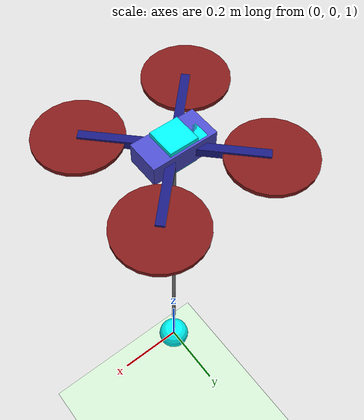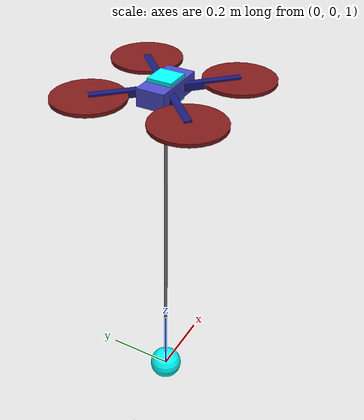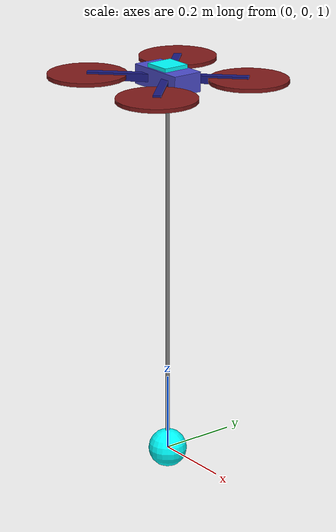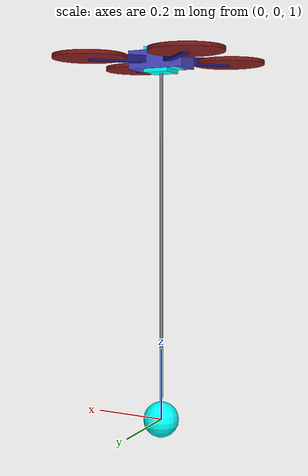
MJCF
<?xml version="1.0" ?>
<mujoco model="Quadcopter">
   <compiler angle="degree" coordinate="local" inertiafromgeom="true"/>
   <asset>
      <texture type="skybox" builtin="gradient" rgb1="1.0 1.0 1.0" rgb2="0.6 0.8 1.0" width="256" height="256"/>
   </asset>
   <worldbody>
      <geom name="ground" type="plane" size="5.0 5.0 0.02" friction="1.0" pos="0.0 0.0 0.0" rgba="0.8 0.9 0.8 1.0"/>
      <body name="quadrotor" pos="0.0 0.0 2.0" quat="1 0 0 0">
         <geom name="geom" type="box" pos="0.0 0.0 0.0" quat="1 0 0 0" size="0.08 0.04 0.025" mass="0.75" density="1000" rgba="0.3 0.3 0.8 1.0"/>
         <joint name="root_joint" type="free"/>
         <geom name="rotor_arm_geom_0" type="box" pos="0.0 0.0 0.0" quat="0.92388 0 0 0.382683" size="0.2 0.01 0.01" mass="0.01" density="1000" rgba="0.1 0.1 0.5 1.0"/>
         <geom name="rotor_prop_geom_0" type="cylinder" size="0.1 0.005" pos="0.1414213562373095 0.14142135623730953 0.0" mass="0.05" density="1000" rgba="0.5 0.1 0.1 1.0"/>
         <geom name="rotor_arm_geom_1" type="box" pos="0.0 0.0 0.0" quat="0.382683 0 0 0.92388" size="0.2 0.01 0.01" mass="0.01" density="1000" rgba="0.1 0.1 0.5 1.0"/>
         <geom name="rotor_prop_geom_1" type="cylinder" size="0.1 0.005" pos="-0.1414213562373095 0.14142135623730953 0.0" mass="0.05" density="1000" rgba="0.5 0.1 0.1 1.0"/>
         <geom name="rotor_arm_geom_2" type="box" pos="0.0 0.0 0.0" quat="-0.382683 0 0 0.92388" size="0.2 0.01 0.01" mass="0.01" density="1000" rgba="0.1 0.1 0.5 1.0"/>
         <geom name="rotor_prop_geom_2" type="cylinder" size="0.1 0.005" pos="-0.1414213562373095 -0.1414213562373095 0.0" mass="0.05" density="1000" rgba="0.5 0.1 0.1 1.0"/>
         <geom name="rotor_arm_geom_3" type="box" pos="0.0 0.0 0.0" quat="-0.92388 0 0 0.382683" size="0.2 0.01 0.01" mass="0.01" density="1000" rgba="0.1 0.1 0.5 1.0"/>
         <geom name="rotor_prop_geom_3" type="cylinder" size="0.1 0.005" pos="0.14142135623730948 -0.14142135623730956 0.0" mass="0.05" density="1000" rgba="0.5 0.1 0.1 1.0"/>
         <site name="quadrotor_end1" type="sphere" pos="0.0 0.0 0.0" quat="1 0 0 0" size="0.01" rgba="0.1 0.1 0.5 1.0"/>
         <site name="quadrotor_thrust" type="box" pos="0.0 0.0 0.0" quat="1 0 0 0" size="0.035 0.035 0.035" rgba="0.0 1 1 1.0"/>
         <site name="quadrotor_Mx" type="box" pos="0.0 0.0 0.0" quat="1 0 0 0" size="0.06 0.035 0.025" rgba="0.0 1 1 1.0"/>
         <site name="quadrotor_My" type="box" pos="0.0 0.0 0.0" quat="1 0 0 0" size="0.06 0.035 0.025" rgba="0.0 1 1 1.0"/>
         <site name="quadrotor_Mz" type="box" pos="0.0 0.0 0.0" quat="1 0 0 0" size="0.06 0.035 0.025" rgba="0.0 1 1 1.0"/>
      </body>
      <body name="pyld" pos="0.0 0.0 1.0" quat="1 0 0 0">
         <geom name="pyld" type="sphere" size="0.05" mass="0.15" density="1000" rgba="0.0 1 1 1.0"/>
         <site name="end2" type="sphere" pos="0.0 0.0 0.0" quat="1 0 0 0" size="0.01" rgba="0.1 0.1 0.5 1.0"/>
         <joint name="pyld_joint" type="free"/>
      </body>
   </worldbody>
   <actuator>
      <motor ctrllimited="true" site="quadrotor_thrust" ctrlrange="0.0 30.0" gear="0.0 0.0 1.0 0.0 0.0 0.0"/>
      <motor ctrllimited="true" site="quadrotor_Mx" ctrlrange="-3.0 3.0" gear="0.0 0.0 0.0 1.0 0.0 0.0"/>
      <motor ctrllimited="true" site="quadrotor_My" ctrlrange="-3.0 3.0" gear="0.0 0.0 0.0 0.0 1.0 0.0"/>
      <motor ctrllimited="true" site="quadrotor_Mz" ctrlrange="-3.0 3.0" gear="0.0 0.0 0.0 0.0 0.0 1.0"/>
   </actuator>
   <tendon>
      <spatial limited="true" range="0.0 1.0" width="0.005" damping="0.0" stiffness="0.0">
         <site site="quadrotor_end1"/>
         <site site="end2"/>
      </spatial>
   </tendon>
</mujoco>
